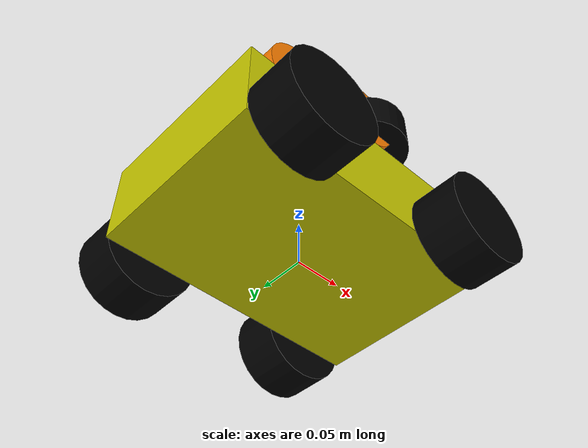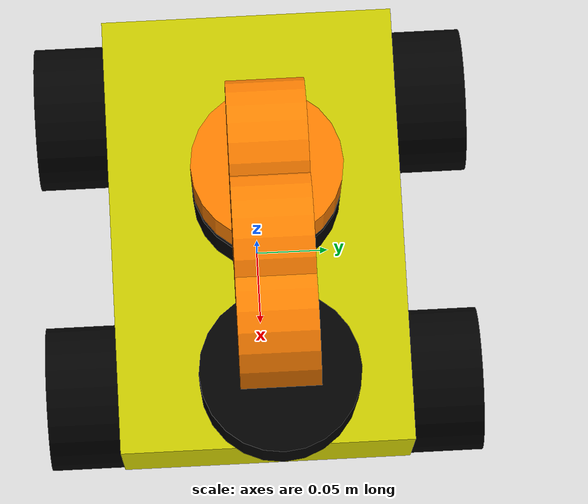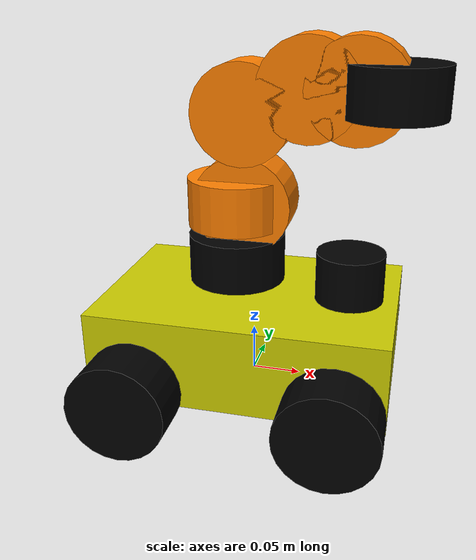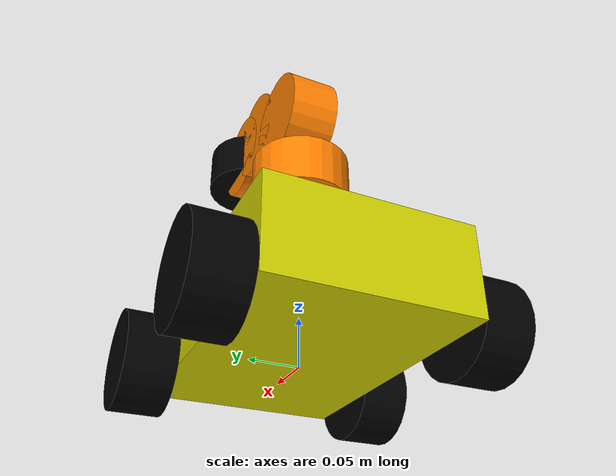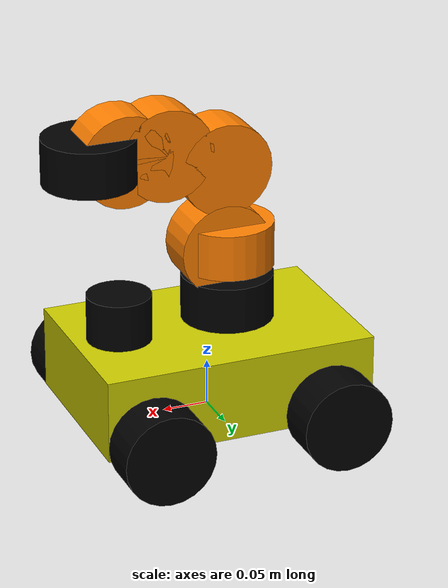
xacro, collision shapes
<?xml version="1.0"?>
<robot xmlns:xacro="https://www.ros.org/wiki/xacro" name="mecanum" xmlns:ignition="http://gazebosim.org/schema">

<xacro:property name="radius" value="0.05" />
<xacro:property name="length" value="0.05" />
<xacro:property name="mass" value="0.4" />
<xacro:property name="box_length" value="0.3" />
<xacro:property name="box_width" value="0.2" />
<xacro:property name="box_height" value="0.09" />
<xacro:property name="box_mass" value="3.0" />

<material name="blue">
 <color rgba="0 0 0.8 1" />
</material>
<material name="yellow">
 <color rgba="0.8 0.8 0 1.0" />
</material>
<material name="black">
 <color rgba="0 0 0 1" />
</material>
<material name="white">
 <color rgba="1 1 1 1" />
</material>
<material name="orange">
 <color rgba="1 0.5 0 1" />
</material>

<link name="front_right_wheel">
    <visual>
        <origin xyz="0 0 0" rpy="1.57075 0 0"  />
        <geometry>
            <mesh filename="file://$(find mecanum_simulation_github)/meshes/Mecanum_jo.stl" scale="0.0010 0.0010 0.0010" />
        </geometry>
        <material name="black" />
    </visual>
    <collision>
        <origin xyz="0 0 0" rpy="1.57075 0 0"  />
        <geometry>
            <cylinder length="${length}" radius="${radius}" />
        </geometry>
    </collision>

    <inertial>
        <mass value="${mass}"/>
        <inertia ixx="${1/12*mass*(3*radius*radius+length*length)}" ixy="0" ixz="0" iyy="${1/2*mass*radius*radius}" iyz="0" izz="${1/12*mass*(3*radius*radius+length*length)}" />
    </inertial>
</link>
<joint name="front_right_wheel_joint" type="continuous">
    <parent link="base_link" />
    <child link="front_right_wheel" />
    <origin xyz="0.1 -${box_width/2+length/2} -0.03" />
    <axis xyz="0 1 0" />
</joint>

<link name="front_left_wheel">
    <visual>
        <origin xyz="0 0 0" rpy="1.57075 0 0"  />
        <geometry>
            <mesh filename="file://$(find mecanum_simulation_github)/meshes/Mecanum_jo.stl" scale="0.0010 0.0010 0.0010" />
        </geometry>
        <material name="black" />
    </visual>
    <collision>
        <origin xyz="0 0 0" rpy="1.57075 0 0"  />
        <geometry>
            <cylinder length="${length}" radius="${radius}" />
        </geometry>
    </collision>

    <inertial>
        <mass value="${mass}"/>
        <inertia ixx="${1/12*mass*(3*radius*radius+length*length)}" ixy="0" ixz="0" iyy="${1/2*mass*radius*radius}" iyz="0" izz="${1/12*mass*(3*radius*radius+length*length)}" />
    </inertial>
</link>
<joint name="front_left_wheel_joint" type="continuous">
    <parent link="base_link" />
    <child link="front_left_wheel" />
    <origin xyz="0.1 ${box_width/2+length/2} -0.03" />
    <axis xyz="0 1 0" />
</joint>

<link name="rear_left_wheel">
    <visual>
        <origin xyz="0 0 0" rpy="1.57075 0 0"  />
        <geometry>
            <mesh filename="file://$(find mecanum_simulation_github)/meshes/Mecanum_jo.stl" scale="0.0010 0.0010 0.0010" />
        </geometry>
        <material name="black" />
    </visual>
    <collision>
        <origin xyz="0 0 0" rpy="1.57075 0 0"  />
        <geometry>
            <cylinder length="${length}" radius="${radius}" />
        </geometry>
    </collision>

    <inertial>
        <mass value="${mass}"/>
        <inertia ixx="${1/12*mass*(3*radius*radius+length*length)}" ixy="0" ixz="0" iyy="${1/2*mass*radius*radius}" iyz="0" izz="${1/12*mass*(3*radius*radius+length*length)}" />
    </inertial>
</link>
<joint name="rear_left_wheel_joint" type="continuous">
    <parent link="base_link" />
    <child link="rear_left_wheel" />
    <origin xyz="-0.1 ${box_width/2+length/2} -0.03" />
    <axis xyz="0 1 0" />
</joint>

<link name="rear_right_wheel">
    <visual>
        <origin xyz="0 0 0" rpy="1.57075 0 0"  />
        <geometry>
            <mesh filename="file://$(find mecanum_simulation_github)/meshes/Mecanum_jo.stl" scale="0.0010 0.0010 0.0010" />
        </geometry>
        <material name="black" />
    </visual>
    <collision>
        <origin xyz="0 0 0" rpy="1.57075 0 0"  />
        <geometry>
            <cylinder length="${length}" radius="${radius}" />
        </geometry>

    </collision>
    <inertial>
        <mass value="${mass}"/>
        <inertia ixx="${1/12*mass*(3*radius*radius+length*length)}" ixy="0" ixz="0" iyy="${1/2*mass*radius*radius}" iyz="0" izz="${1/12*mass*(3*radius*radius+length*length)}" />
    </inertial>
</link>
<joint name="rear_right_wheel_joint" type="continuous">
    <parent link="base_link" />
    <child link="rear_right_wheel" />
    <origin xyz="-0.1 -${box_width/2+length/2} -0.03" />
    <axis xyz="0 1 0" />
</joint>

<link name="base_link">
    <visual>
    <origin xyz="0 0 0" rpy="0 0 0"  />
        <geometry>
            <box size="${box_length} ${box_width} ${box_height}" />
        </geometry>
        <material name="yellow" />
    </visual>
    <collision>
        <origin xyz="0 0 0" rpy="0 0 0"  />
        <geometry>
            <box size="${box_length} ${box_width} ${box_height}" />
        </geometry>
    </collision>
    <inertial>
        <origin xyz="-0.02 0 0.035" rpy="0 0 0" />
        <mass value="${box_mass}" />
        <inertia ixx="${1/12*box_mass*(box_height*box_height+box_width*box_width)}" ixy="0" ixz="0" iyy="${1/12*box_mass*(box_length*box_length+box_height*box_height)}" iyz="0" izz="${1/12*box_mass*(box_length*box_length+box_width*box_width)}" />
    </inertial>
</link>

<link name="base_footprint" />

<joint name="base_joint" type="fixed">
    <parent link="base_footprint" />
    <child link="base_link" />
    <origin xyz="0 0 0.05" rpy="0 0 0" />
</joint>

<link name="base_scan">
    <visual>
        <origin xyz="0 0 -0.05" rpy="0 0 0"  />
        <geometry>
            <mesh filename="file://$(find mecanum_simulation_github)/meshes/sensors/hokuyo_ust10.stl" scale="0.8 0.8 0.8" />
        </geometry>
        <material name="black" />
    </visual>
    <collision>
        <origin xyz="0 0 -0.0215" rpy="0 0 0" />
        <geometry>
            <cylinder length="0.055" radius="0.035" />
        </geometry>
    </collision>
    <inertial>
        <mass value="0.178"/>
        <origin xyz="0 0 0" />
        <inertia ixx="1.1e-04" ixy="-1.56e-04" ixz="-3.12e-04" iyy="1.85e-04" iyz="-2.23e-04" izz="2.21e-04" />
    </inertial>
</link>

<joint name="scan_joint" type="fixed">
    <parent link="base_link" />
    <child link="base_scan" />
    <origin xyz="0.1 0 0.09" rpy="0 0 0" />
</joint>

<link name="link_0">
    <visual>
        <origin xyz="-0.005 0.010 -0.035" rpy="1.57075 0 0"  />
        <geometry>
            <mesh filename="file://$(find mecanum_simulation_github)/meshes/simplify_link_0.stl" scale="0.0003 0.0003 0.0003" />
        </geometry>
        <material name="black" />
    </visual>
    <collision>
        <origin xyz="0 0 0" rpy="0 0 0"  />
        <geometry>
            <cylinder length="${length}" radius="${radius}" />
        </geometry>
    </collision>

    <inertial>
        <mass value="${mass}"/>
        <inertia ixx="${1/12*mass*(3*radius*radius+length*length)}" ixy="0" ixz="0" iyy="${1/2*mass*radius*radius}" iyz="0" izz="${1/12*mass*(3*radius*radius+length*length)}" />
    </inertial>
</link>
<joint name="teto" type="fixed">
    <parent link="base_link" />
    <child link="link_0" />
    <origin xyz="-0.02 0.0075 0.080" />
    <axis xyz="0 1 0" />
</joint>

<link name="link_1">
    <visual>
        <origin xyz="-0.020 -0.030 -0.065" rpy="1.57075 0 0"  />
        <geometry>
            <mesh filename="file://$(find mecanum_simulation_github)/meshes/simplify_link_1.stl" scale="-0.0003 0.0003 0.0003" />
        </geometry>
        <material name="orange" />
    </visual>
    <collision>
        <origin xyz="0 0 0" rpy="0 0 0"  />
        <geometry>
            <cylinder length="${length}" radius="${radius}" />
        </geometry>
    </collision>

    <inertial>
        <mass value="${mass}"/>
        <inertia ixx="${1/12*mass*(3*radius*radius+length*length)}" ixy="0" ixz="0" iyy="${1/2*mass*radius*radius}" iyz="0" izz="${1/12*mass*(3*radius*radius+length*length)}" />
    </inertial>
</link>
<joint name="rob_joint_1" type="fixed">
    <parent link="link_0" />
    <child link="link_1" />
    <origin xyz="0 0 0.060" rpy="0 0 0"/>
    <axis xyz="0 0 1" />
</joint>

<link name="link_2">
    <visual>
        <origin xyz="0.005 -0.115 0.048" rpy="0 0 0"  />
        <geometry>
            <mesh filename="file://$(find mecanum_simulation_github)/meshes/simplify_link_2.stl" scale="-0.0003 0.0003 0.0003" />
        </geometry>
        <material name="orange" />
    </visual>
    <collision>
        <origin xyz="0 0 0" rpy="0 0 0"  />
        <geometry>
            <cylinder length="${length}" radius="${radius}" />
        </geometry>
    </collision>

    <inertial>
        <mass value="${mass}"/>
        <inertia ixx="${1/12*mass*(3*radius*radius+length*length)}" ixy="0" ixz="0" iyy="${1/2*mass*radius*radius}" iyz="0" izz="${1/12*mass*(3*radius*radius+length*length)}" />
    </inertial>
</link>
<joint name="rob_joint_2" type="fixed">
    <parent link="link_1" />
    <child link="link_2" />
    <origin xyz="0.01 0 0" rpy="-1.57075 0 0"/>
    <axis xyz="0 1 0" />
</joint>

<link name="link_3">
    <visual>
        <origin xyz="0.015 -0.025 0.0235" rpy="0 0 0"  />
        <geometry>
            <mesh filename="file://$(find mecanum_simulation_github)/meshes/simplify_link_3.stl" scale="-0.0003 0.0003 0.0003" />
        </geometry>
        <material name="orange" />
    </visual>
    <collision>
        <origin xyz="0 0 0" rpy="0 0 0"  />
        <geometry>
            <cylinder length="${length}" radius="${radius}" />
        </geometry>
    </collision>

    <inertial>
        <mass value="${mass}"/>
        <inertia ixx="${1/12*mass*(3*radius*radius+length*length)}" ixy="0" ixz="0" iyy="${1/2*mass*radius*radius}" iyz="0" izz="${1/12*mass*(3*radius*radius+length*length)}" />
    </inertial>
</link>
<joint name="rob_joint_3" type="fixed">
    <parent link="link_2" />
    <child link="link_3" />
    <origin xyz="0 -0.090 0" rpy="3.14 0 0" />
    <axis xyz="0 1 0" />
</joint>

<link name="link_4">
    <visual>
        <origin xyz="0.04 -0.020 0.015" rpy="0 0 0"  />
        <geometry>
            <mesh filename="file://$(find mecanum_simulation_github)/meshes/simplify_link_4.stl" scale="-0.0003 0.0003 0.0003" />
        </geometry>
        <material name="orange" />
    </visual>
    <collision>
        <origin xyz="0 0 0" rpy="0 0 0"  />
        <geometry>
            <cylinder length="${length}" radius="${radius}" />
        </geometry>
    </collision>

    <inertial>
        <mass value="${mass}"/>
        <inertia ixx="${1/12*mass*(3*radius*radius+length*length)}" ixy="0" ixz="0" iyy="${1/2*mass*radius*radius}" iyz="0" izz="${1/12*mass*(3*radius*radius+length*length)}" />
    </inertial>
</link>
<joint name="rob_joint_4" type="fixed">
    <parent link="link_3" />
    <child link="link_4" />
    <origin xyz="0.065 0.025 0" />
    <axis xyz="0 1 0" />
</joint>

<link name="link_5">
    <visual>
        <origin xyz="0.020 -0.02 0.02" rpy="0 0 0"  />
        <geometry>
            <mesh filename="file://$(find mecanum_simulation_github)/meshes/simplify_link_5.stl" scale="-0.0003 0.0003 0.0003" />
        </geometry>
        <material name="orange" />
    </visual>
    <collision>
        <origin xyz="0 0 0" rpy="0 0 0"  />
        <geometry>
            <cylinder length="${length}" radius="${radius}" />
        </geometry>
    </collision>

    <inertial>
        <mass value="${mass}"/>
        <inertia ixx="${1/12*mass*(3*radius*radius+length*length)}" ixy="0" ixz="0" iyy="${1/2*mass*radius*radius}" iyz="0" izz="${1/12*mass*(3*radius*radius+length*length)}" />
    </inertial>
</link>
<joint name="rob_joint_5" type="fixed">
    <parent link="link_4" />
    <child link="link_5" />
    <origin xyz="0.045 0 0" />
    <axis xyz="0 1 0" />
</joint>

<link name="link_6">
    <visual>
        <origin xyz="0.01 -0.021 -0.021" rpy="1.57075 0 0"  />
        <geometry>
            <mesh filename="file://$(find mecanum_simulation_github)/meshes/link_6.stl" scale="-0.0003 0.0003 0.0003" />
        </geometry>
        <material name="black" />
    </visual>
    <collision>
        <origin xyz="0 0 0" rpy="0 0 0"  />
        <geometry>
            <cylinder length="${length}" radius="${radius}" />
        </geometry>
    </collision>

    <inertial>
        <mass value="${mass}"/>
        <inertia ixx="${1/12*mass*(3*radius*radius+length*length)}" ixy="0" ixz="0" iyy="${1/2*mass*radius*radius}" iyz="0" izz="${1/12*mass*(3*radius*radius+length*length)}" />
    </inertial>
</link>
<joint name="rob_joint_6" type="fixed">
    <parent link="link_5" />
    <child link="link_6" />
    <origin xyz="0.033 0 0" rpy="-1.57075 0 0" />
    <axis xyz="0 1 0" />
</joint>

<gazebo reference="base_scan">
<sensor name="base_scan" type="gpu_lidar">
        <pose relative_to='base_scan'>0 0 0 0 0 0</pose>
        <topic>scan</topic>
        <gz_frame_id>base_scan</gz_frame_id>
        <update_rate>10</update_rate>
        <lidar>
          <scan>
            <horizontal>
              <samples>500</samples>
              <resolution>1</resolution>
              <min_angle>-2.3562</min_angle>
              <max_angle>2.3562</max_angle>
            </horizontal>
          </scan>
          <range>
            <min>0.120</min>
            <max>20.0</max>
            <resolution>0.25</resolution>
          </range>
          <noise>
                <type>gaussian</type>
                <mean>0.0</mean>
                <stddev>0.02</stddev>
          </noise>
          <frame_id>base_scan</frame_id>
        </lidar>
        <always_on>1</always_on>
        <visualize>true</visualize>
      </sensor>
    <material>Gazebo/Black</material>
</gazebo>
<gazebo>
    <plugin
      filename="libignition-gazebo-mecanum-drive-system.so"
      name="ignition::gazebo::systems::MecanumDrive">
      <!-- Topic for the command input -->
      <topic>/cmd_vel</topic>

      <!-- Wheel joints -->
      <front_left_joint>front_left_wheel_joint</front_left_joint>
      <front_right_joint>front_right_wheel_joint</front_right_joint>
      <back_left_joint>rear_left_wheel_joint</back_left_joint>
      <back_right_joint>rear_right_wheel_joint</back_right_joint>

      <!-- Wheel parameters -->
      <wheel_separation>0.3</wheel_separation>
      <wheelbase>0.3</wheelbase>
      <wheel_radius>0.1</wheel_radius>

      <!-- Control gains and limits (optional) -->
      <min_acceleration>-5</min_acceleration>
      <max_acceleration>5</max_acceleration>

      <!-- Other parameters (optional) -->
      <odom_topic>odom</odom_topic>
      <tf_topic>tf</tf_topic>
      <frame_id>odom</frame_id>
      <child_frame_id>base_footprint</child_frame_id>
      <odom_publish_frequency>30</odom_publish_frequency>
      <publish_odom>true</publish_odom>
      <publish_odom_tf>true</publish_odom_tf>
    </plugin>

    <plugin name="ignition::gazebo::systems::OdometryPublisher" filename="libignition-gazebo-odometry-publisher-system">
      <odom_topic>odom</odom_topic>
      <odom_frame>odom</odom_frame>
      <robot_base_frame>base_footprint</robot_base_frame>
      <publish_tf>true</publish_tf>
      <tf_topic>tf</tf_topic>
      <odom_publish_frequency>30</odom_publish_frequency>
      <xyz_offset>0 0 0</xyz_offset>
      <rpy_offset>0 0 0</rpy_offset>
    </plugin>

    <plugin
        filename="libignition-gazebo-joint-state-publisher-system"
        name="ignition::gazebo::systems::JointStatePublisher">
        <topic>joint_states</topic>
        <joint_name>front_left_wheel_joint</joint_name>
        <joint_name>front_right_wheel_joint</joint_name>
        <joint_name>rear_left_wheel_joint</joint_name>
        <joint_name>rear_right_wheel_joint</joint_name>
    </plugin>

</gazebo>
<gazebo reference="front_right_wheel">
    <collision>
        <surface>
            <friction>
                <ode>
                    <mu1>1.5</mu1>
                    <mu2>0</mu2>
                    <fdir1 ignition:expressed_in="base_footprint">1 1 0</fdir1>
                </ode>
            </friction>
        </surface>
    </collision>
    <kp>500000.0</kp>
    <kd>100.0</kd>
    <maxVel>0.5</maxVel>
    <minDepth>0.001</minDepth>

    <material>Gazebo/Black</material>
</gazebo>
<gazebo reference="front_left_wheel">
    <collision>
        <surface>
            <friction>
                <ode>
                    <mu1>1.5</mu1>
                    <mu2>0</mu2>
                    <fdir1 ignition:expressed_in="base_footprint">1 -1 0</fdir1>
                </ode>
            </friction>
        </surface>
    </collision>
    <kp>500000.0</kp>
    <kd>100.0</kd>
    <maxVel>0.5</maxVel>
    <minDepth>0.001</minDepth>

    <material>Gazebo/Black</material>
  </gazebo>
  <gazebo reference="rear_right_wheel">
    <collision>
        <surface>
            <friction>
                <ode>
                    <mu1>1.5</mu1>
                    <mu2>0</mu2>
                    <fdir1 ignition:expressed_in="base_footprint">1 -1 0</fdir1>
                </ode>
            </friction>
        </surface>
    </collision>
    <kp>500000.0</kp>
    <kd>100.0</kd>
    <maxVel>0.5</maxVel>
    <minDepth>0.001</minDepth>

    <material>Gazebo/Black</material>
  </gazebo>
  <gazebo reference="rear_left_wheel">
    <collision>
        <surface>
            <friction>
                <ode>
                    <mu1>1.5</mu1>
                    <mu2>0</mu2>
                    <fdir1 ignition:expressed_in="base_footprint">1 1 0</fdir1>
                </ode>
            </friction>
        </surface>
    </collision>
    <kp>500000.0</kp>
    <kd>100.0</kd>
    <maxVel>0.5</maxVel>
    <minDepth>0.001</minDepth>

    <material>Gazebo/Black</material>
  </gazebo>
  <gazebo reference="base_link">
    <material>Gazebo/Yellow</material>
    <mu1>0.000002</mu1>
    <mu2>0.000002</mu2>
  </gazebo>

  <gazebo reference="link_0">
    <material>Gazebo/Orange</material>
    <mu1>0.000002</mu1>
    <mu2>0.000002</mu2>
  </gazebo>

</robot>
